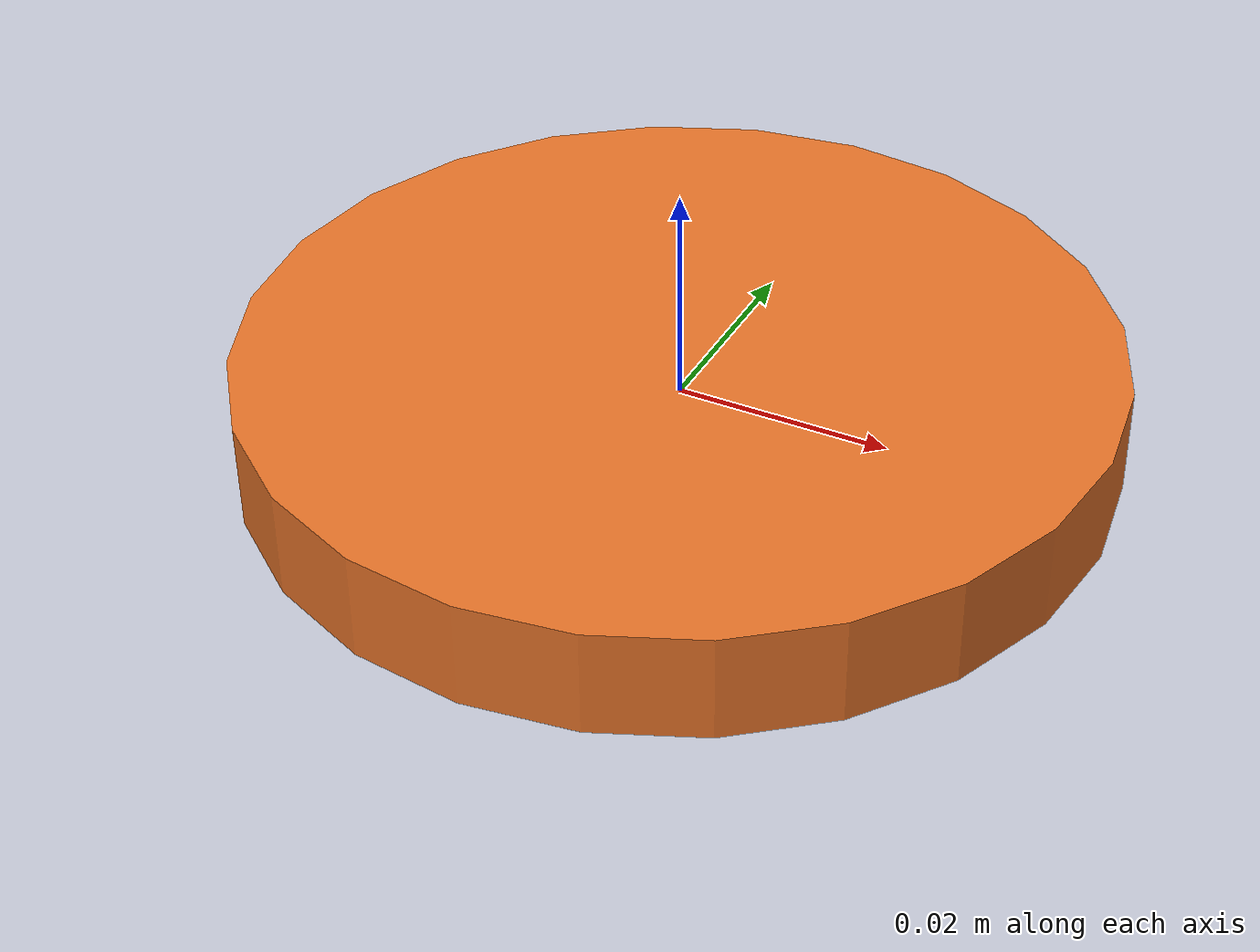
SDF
<?xml version="1.0"?>
<sdf version="1.6">
  <model name="imav2026_copper_disc">
    <static>true</static>

    <link name="copper_disc_link">
      <visual name="copper_disc_visual">
        <geometry>
          <cylinder>
            <radius>0.04</radius>
            <length>0.01</length>
          </cylinder>
        </geometry>
        <material>
          <ambient>0.8 0.38 0.12 1</ambient>
          <diffuse>0.9 0.45 0.16 1</diffuse>
          <specular>0.6 0.45 0.25 1</specular>
        </material>
      </visual>

      <collision name="copper_disc_collision">
        <geometry>
          <cylinder>
            <radius>0.04</radius>
            <length>0.01</length>
          </cylinder>
        </geometry>
      </collision>
      <sensor name="copper_disc_contact_sensor" type="contact">
        <always_on>true</always_on>
        <update_rate>30.0</update_rate>

        <contact>
          <collision>copper_disc_collision</collision>
        </contact>

        <plugin name="copper_disc_bumper" filename="libgazebo_ros_bumper.so">
          <alwaysOn>true</alwaysOn>
          <updateRate>30.0</updateRate>
          <frameName>world</frameName>
          <bumperTopicName>imav2026/mission4/disc_contact_raw</bumperTopicName>
        </plugin>
      </sensor>
    </link>
  </model>
</sdf>
